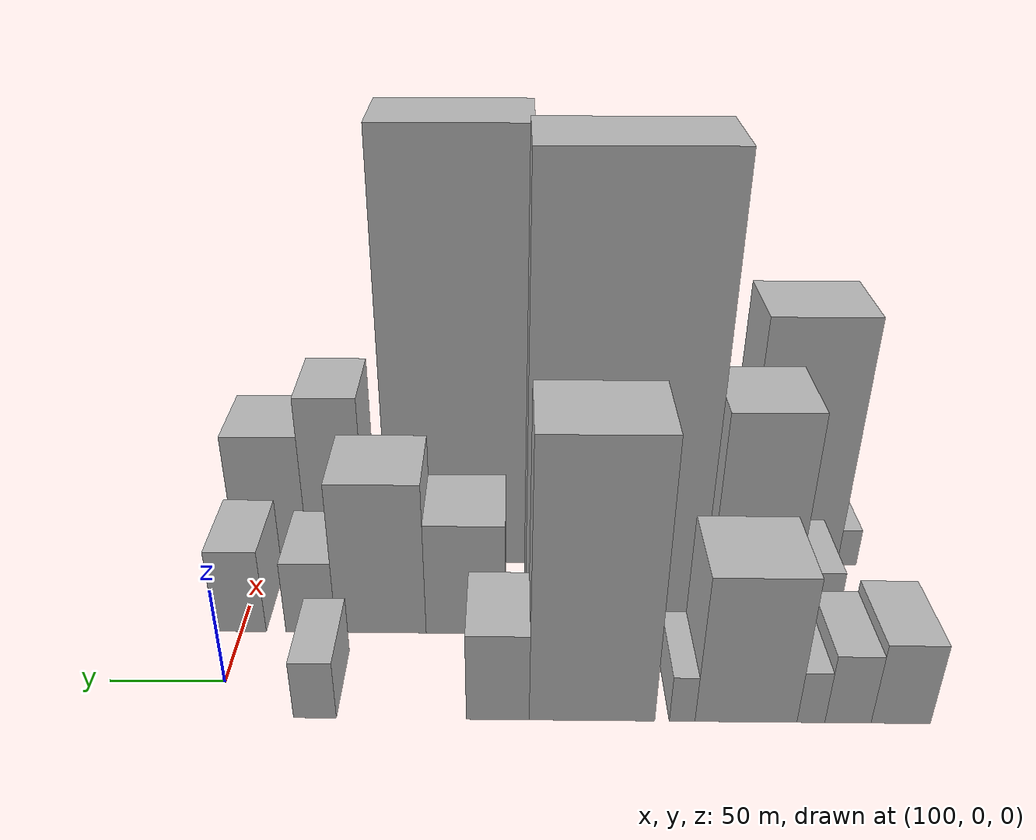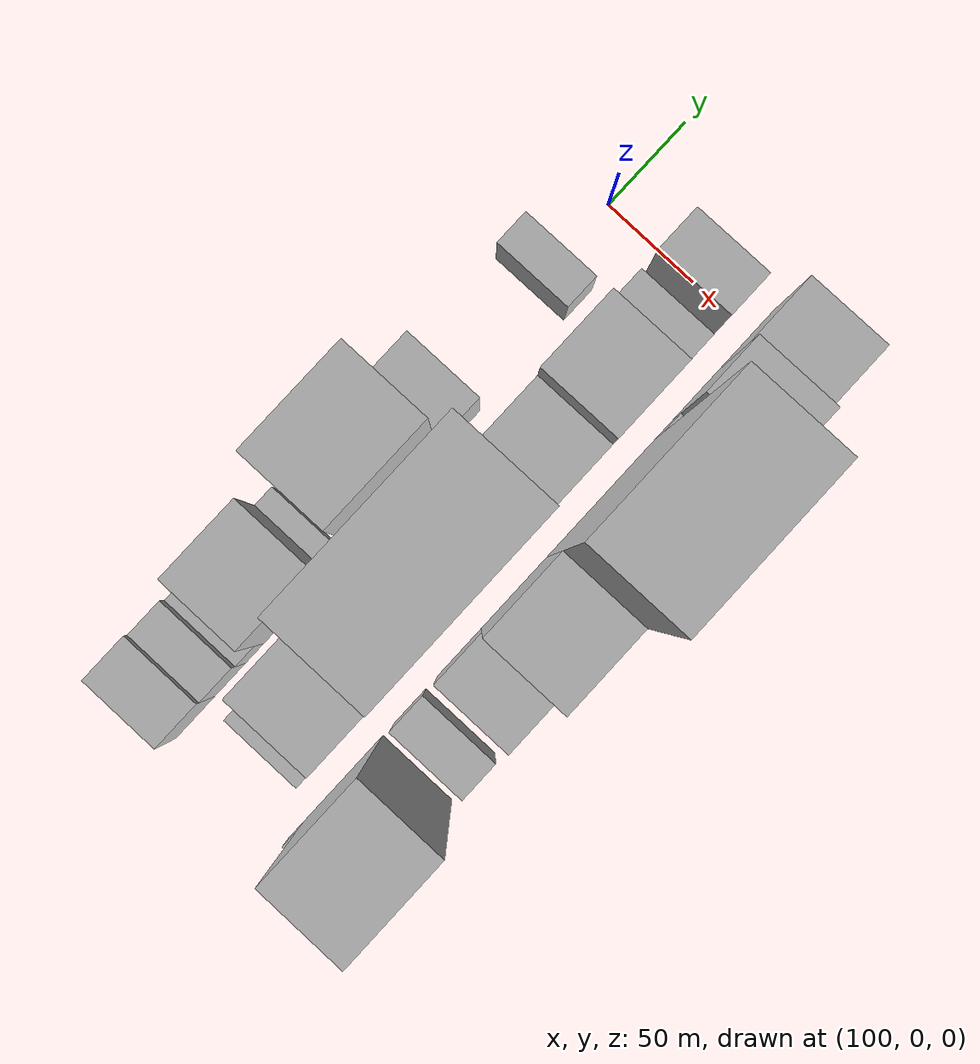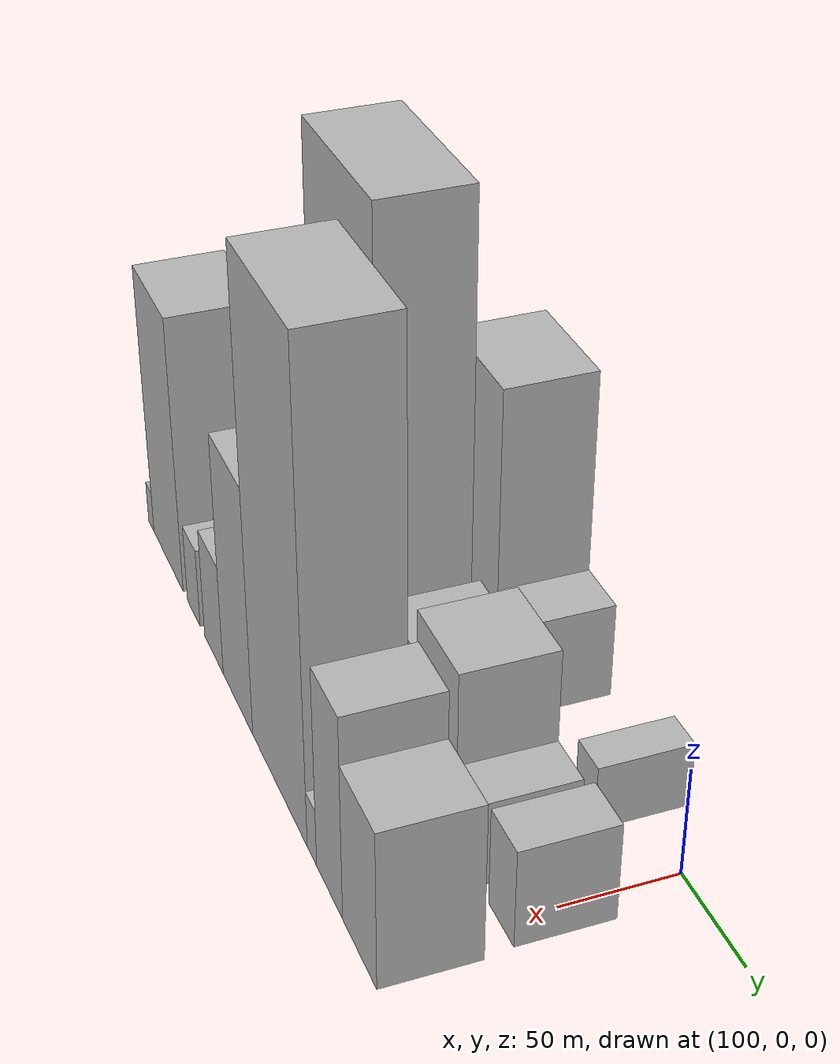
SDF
<sdf version="1.6">
 <world name="default">
  <model name="building_10">
   <static>1</static>
   <pose>100.0000 -283.1105 0 0.000000 0.000000 0.000000</pose>
   <link name="link">
    <pose>0 0 21.00 0 0 0</pose>
    <collision name="collision"><geometry><box><size>40.0000 24.2902 42.0000</size></box></geometry></collision>
    <visual name="visual">
     <cast_shadows>0</cast_shadows>
     <geometry><box><size>40.0000 24.2902 42.0000</size></box></geometry>
     <material>
      <script>
       <uri>model://HANNAS_wall/materials/scripts</uri>
       <uri>model://HANNAS_wall/materials/textures</uri>
       <name>vrc/HANNAS_wall</name>
      </script>
     </material>
    </visual>
   </link>
  </model>
  <model name="building_11">
   <static>1</static>
   <pose>100.0000 -261.4859 0 0.000000 0.000000 0.000000</pose>
   <link name="link">
    <pose>0 0 18.00 0 0 0</pose>
    <collision name="collision"><geometry><box><size>40.0000 18.9591 36.0000</size></box></geometry></collision>
    <visual name="visual">
     <cast_shadows>0</cast_shadows>
     <geometry><box><size>40.0000 18.9591 36.0000</size></box></geometry>
     <material>
      <script>
       <uri>model://HANNAS_wall/materials/scripts</uri>
       <uri>model://HANNAS_wall/materials/textures</uri>
       <name>vrc/HANNAS_wall</name>
      </script>
     </material>
    </visual>
   </link>
  </model>
  <model name="building_12">
   <static>1</static>
   <pose>100.0000 -246.2850 0 0.000000 0.000000 0.000000</pose>
   <link name="link">
    <pose>0 0 13.50 0 0 0</pose>
    <collision name="collision"><geometry><box><size>40.0000 11.4427 27.0000</size></box></geometry></collision>
    <visual name="visual">
     <cast_shadows>0</cast_shadows>
     <geometry><box><size>40.0000 11.4427 27.0000</size></box></geometry>
     <material>
      <script>
       <uri>model://HANNAS_wall/materials/scripts</uri>
       <uri>model://HANNAS_wall/materials/textures</uri>
       <name>vrc/HANNAS_wall</name>
      </script>
     </material>
    </visual>
   </link>
  </model>
  <model name="building_13">
   <static>1</static>
   <pose>100.0000 -219.5942 0 0.000000 0.000000 0.000000</pose>
   <link name="link">
    <pose>0 0 37.50 0 0 0</pose>
    <collision name="collision"><geometry><box><size>40.0000 41.9387 75.0000</size></box></geometry></collision>
    <visual name="visual">
     <cast_shadows>0</cast_shadows>
     <geometry><box><size>40.0000 41.9387 75.0000</size></box></geometry>
     <material>
      <script>
       <uri>model://HANNAS_wall/materials/scripts</uri>
       <uri>model://HANNAS_wall/materials/textures</uri>
       <name>vrc/HANNAS_wall</name>
      </script>
     </material>
    </visual>
   </link>
  </model>
  <model name="building_14">
   <static>1</static>
   <pose>100.0000 -193.3613 0 0.000000 0.000000 0.000000</pose>
   <link name="link">
    <pose>0 0 12.00 0 0 0</pose>
    <collision name="collision"><geometry><box><size>40.0000 10.5271 24.0000</size></box></geometry></collision>
    <visual name="visual">
     <cast_shadows>0</cast_shadows>
     <geometry><box><size>40.0000 10.5271 24.0000</size></box></geometry>
     <material>
      <script>
       <uri>model://HANNAS_wall/materials/scripts</uri>
       <uri>model://HANNAS_wall/materials/textures</uri>
       <name>vrc/HANNAS_wall</name>
      </script>
     </material>
    </visual>
   </link>
  </model>
  <model name="building_15">
   <static>1</static>
   <pose>100.0000 -156.2065 0 0.000000 0.000000 0.000000</pose>
   <link name="link">
    <pose>0 0 69.00 0 0 0</pose>
    <collision name="collision"><geometry><box><size>40.0000 51.7826 138.0000</size></box></geometry></collision>
    <visual name="visual">
     <cast_shadows>0</cast_shadows>
     <geometry><box><size>40.0000 51.7826 138.0000</size></box></geometry>
     <material>
      <script>
       <uri>model://HANNAS_wall/materials/scripts</uri>
       <uri>model://HANNAS_wall/materials/textures</uri>
       <name>vrc/HANNAS_wall</name>
      </script>
     </material>
    </visual>
   </link>
  </model>
  <model name="building_16">
   <static>1</static>
   <pose>100.0000 -117.3530 0 0.000000 0.000000 0.000000</pose>
   <link name="link">
    <pose>0 0 22.50 0 0 0</pose>
    <collision name="collision"><geometry><box><size>40.0000 25.9244 45.0000</size></box></geometry></collision>
    <visual name="visual">
     <cast_shadows>0</cast_shadows>
     <geometry><box><size>40.0000 25.9244 45.0000</size></box></geometry>
     <material>
      <script>
       <uri>model://HANNAS_wall/materials/scripts</uri>
       <uri>model://HANNAS_wall/materials/textures</uri>
       <name>vrc/HANNAS_wall</name>
      </script>
     </material>
    </visual>
   </link>
  </model>
  <model name="building_17">
   <static>1</static>
   <pose>100.0000 -41.7375 0 0.000000 0.000000 0.000000</pose>
   <link name="link">
    <pose>0 0 15.00 0 0 0</pose>
    <collision name="collision"><geometry><box><size>40.0000 17.7689 30.0000</size></box></geometry></collision>
    <visual name="visual">
     <cast_shadows>0</cast_shadows>
     <geometry><box><size>40.0000 17.7689 30.0000</size></box></geometry>
     <material>
      <script>
       <uri>model://HANNAS_wall/materials/scripts</uri>
       <uri>model://HANNAS_wall/materials/textures</uri>
       <name>vrc/HANNAS_wall</name>
      </script>
     </material>
    </visual>
   </link>
  </model>
  <model name="building_42">
   <static>1</static>
   <pose>152.0000 -259.4082 0 0.000000 0.000000 0.000000</pose>
   <link name="link">
    <pose>0 0 18.00 0 0 0</pose>
    <collision name="collision"><geometry><box><size>40.0000 20.0698 36.0000</size></box></geometry></collision>
    <visual name="visual">
     <cast_shadows>0</cast_shadows>
     <geometry><box><size>40.0000 20.0698 36.0000</size></box></geometry>
     <material>
      <script>
       <uri>model://HANNAS_wall/materials/scripts</uri>
       <uri>model://HANNAS_wall/materials/textures</uri>
       <name>vrc/HANNAS_wall</name>
      </script>
     </material>
    </visual>
   </link>
  </model>
  <model name="building_43">
   <static>1</static>
   <pose>152.0000 -229.8704 0 0.000000 0.000000 0.000000</pose>
   <link name="link">
    <pose>0 0 58.50 0 0 0</pose>
    <collision name="collision"><geometry><box><size>40.0000 39.0057 117.0000</size></box></geometry></collision>
    <visual name="visual">
     <cast_shadows>0</cast_shadows>
     <geometry><box><size>40.0000 39.0057 117.0000</size></box></geometry>
     <material>
      <script>
       <uri>model://HANNAS_wall/materials/scripts</uri>
       <uri>model://HANNAS_wall/materials/textures</uri>
       <name>vrc/HANNAS_wall</name>
      </script>
     </material>
    </visual>
   </link>
  </model>
  <model name="building_44">
   <static>1</static>
   <pose>152.0000 -168.1744 0 0.000000 0.000000 0.000000</pose>
   <link name="link">
    <pose>0 0 112.50 0 0 0</pose>
    <collision name="collision"><geometry><box><size>40.0000 78.3864 225.0000</size></box></geometry></collision>
    <visual name="visual">
     <cast_shadows>0</cast_shadows>
     <geometry><box><size>40.0000 78.3864 225.0000</size></box></geometry>
     <material>
      <script>
       <uri>model://HANNAS_wall/materials/scripts</uri>
       <uri>model://HANNAS_wall/materials/textures</uri>
       <name>vrc/HANNAS_wall</name>
      </script>
     </material>
    </visual>
   </link>
  </model>
  <model name="building_45">
   <static>1</static>
   <pose>152.0000 -102.0199 0 0.000000 0.000000 0.000000</pose>
   <link name="link">
    <pose>0 0 30.00 0 0 0</pose>
    <collision name="collision"><geometry><box><size>40.0000 35.9226 60.0000</size></box></geometry></collision>
    <visual name="visual">
     <cast_shadows>0</cast_shadows>
     <geometry><box><size>40.0000 35.9226 60.0000</size></box></geometry>
     <material>
      <script>
       <uri>model://HANNAS_wall/materials/scripts</uri>
       <uri>model://HANNAS_wall/materials/textures</uri>
       <name>vrc/HANNAS_wall</name>
      </script>
     </material>
    </visual>
   </link>
  </model>
  <model name="building_46">
   <static>1</static>
   <pose>152.0000 -63.4967 0 0.000000 0.000000 0.000000</pose>
   <link name="link">
    <pose>0 0 40.50 0 0 0</pose>
    <collision name="collision"><geometry><box><size>40.0000 41.1237 81.0000</size></box></geometry></collision>
    <visual name="visual">
     <cast_shadows>0</cast_shadows>
     <geometry><box><size>40.0000 41.1237 81.0000</size></box></geometry>
     <material>
      <script>
       <uri>model://HANNAS_wall/materials/scripts</uri>
       <uri>model://HANNAS_wall/materials/textures</uri>
       <name>vrc/HANNAS_wall</name>
      </script>
     </material>
    </visual>
   </link>
  </model>
  <model name="building_47">
   <static>1</static>
   <pose>152.0000 -31.5005 0 0.000000 0.000000 0.000000</pose>
   <link name="link">
    <pose>0 0 19.50 0 0 0</pose>
    <collision name="collision"><geometry><box><size>40.0000 22.8687 39.0000</size></box></geometry></collision>
    <visual name="visual">
     <cast_shadows>0</cast_shadows>
     <geometry><box><size>40.0000 22.8687 39.0000</size></box></geometry>
     <material>
      <script>
       <uri>model://HANNAS_wall/materials/scripts</uri>
       <uri>model://HANNAS_wall/materials/textures</uri>
       <name>vrc/HANNAS_wall</name>
      </script>
     </material>
    </visual>
   </link>
  </model>
  <model name="building_48">
   <static>1</static>
   <pose>152.0000 0.6745 0 0.000000 0.000000 0.000000</pose>
   <link name="link">
    <pose>0 0 22.50 0 0 0</pose>
    <collision name="collision"><geometry><box><size>40.0000 23.4812 45.0000</size></box></geometry></collision>
    <visual name="visual">
     <cast_shadows>0</cast_shadows>
     <geometry><box><size>40.0000 23.4812 45.0000</size></box></geometry>
     <material>
      <script>
       <uri>model://HANNAS_wall/materials/scripts</uri>
       <uri>model://HANNAS_wall/materials/textures</uri>
       <name>vrc/HANNAS_wall</name>
      </script>
     </material>
    </visual>
   </link>
  </model>
  <model name="building_70">
   <static>1</static>
   <pose>204.0000 -288.8050 0 0.000000 0.000000 0.000000</pose>
   <link name="link">
    <pose>0 0 10.50 0 0 0</pose>
    <collision name="collision"><geometry><box><size>40.0000 9.4171 21.0000</size></box></geometry></collision>
    <visual name="visual">
     <cast_shadows>0</cast_shadows>
     <geometry><box><size>40.0000 9.4171 21.0000</size></box></geometry>
     <material>
      <script>
       <uri>model://HANNAS_wall/materials/scripts</uri>
       <uri>model://HANNAS_wall/materials/textures</uri>
       <name>vrc/HANNAS_wall</name>
      </script>
     </material>
    </visual>
   </link>
  </model>
  <model name="building_71">
   <static>1</static>
   <pose>204.0000 -259.3557 0 0.000000 0.000000 0.000000</pose>
   <link name="link">
    <pose>0 0 67.50 0 0 0</pose>
    <collision name="collision"><geometry><box><size>40.0000 49.4816 135.0000</size></box></geometry></collision>
    <visual name="visual">
     <cast_shadows>0</cast_shadows>
     <geometry><box><size>40.0000 49.4816 135.0000</size></box></geometry>
     <material>
      <script>
       <uri>model://HANNAS_wall/materials/scripts</uri>
       <uri>model://HANNAS_wall/materials/textures</uri>
       <name>vrc/HANNAS_wall</name>
      </script>
     </material>
    </visual>
   </link>
  </model>
  <model name="building_72">
   <static>1</static>
   <pose>204.0000 -217.6466 0 0.000000 0.000000 0.000000</pose>
   <link name="link">
    <pose>0 0 19.50 0 0 0</pose>
    <collision name="collision"><geometry><box><size>40.0000 19.9365 39.0000</size></box></geometry></collision>
    <visual name="visual">
     <cast_shadows>0</cast_shadows>
     <geometry><box><size>40.0000 19.9365 39.0000</size></box></geometry>
     <material>
      <script>
       <uri>model://HANNAS_wall/materials/scripts</uri>
       <uri>model://HANNAS_wall/materials/textures</uri>
       <name>vrc/HANNAS_wall</name>
      </script>
     </material>
    </visual>
   </link>
  </model>
  <model name="building_73">
   <static>1</static>
   <pose>204.0000 -186.7148 0 0.000000 0.000000 0.000000</pose>
   <link name="link">
    <pose>0 0 27.00 0 0 0</pose>
    <collision name="collision"><geometry><box><size>40.0000 27.9272 54.0000</size></box></geometry></collision>
    <visual name="visual">
     <cast_shadows>0</cast_shadows>
     <geometry><box><size>40.0000 27.9272 54.0000</size></box></geometry>
     <material>
      <script>
       <uri>model://HANNAS_wall/materials/scripts</uri>
       <uri>model://HANNAS_wall/materials/textures</uri>
       <name>vrc/HANNAS_wall</name>
      </script>
     </material>
    </visual>
   </link>
  </model>
  <model name="building_74">
   <static>1</static>
   <pose>204.0000 -151.9746 0 0.000000 0.000000 0.000000</pose>
   <link name="link">
    <pose>0 0 58.50 0 0 0</pose>
    <collision name="collision"><geometry><box><size>40.0000 41.5532 117.0000</size></box></geometry></collision>
    <visual name="visual">
     <cast_shadows>0</cast_shadows>
     <geometry><box><size>40.0000 41.5532 117.0000</size></box></geometry>
     <material>
      <script>
       <uri>model://HANNAS_wall/materials/scripts</uri>
       <uri>model://HANNAS_wall/materials/textures</uri>
       <name>vrc/HANNAS_wall</name>
      </script>
     </material>
    </visual>
   </link>
  </model>
  <model name="building_75">
   <static>1</static>
   <pose>204.0000 -96.6365 0 0.000000 0.000000 0.000000</pose>
   <link name="link">
    <pose>0 0 109.50 0 0 0</pose>
    <collision name="collision"><geometry><box><size>40.0000 69.1231 219.0000</size></box></geometry></collision>
    <visual name="visual">
     <cast_shadows>0</cast_shadows>
     <geometry><box><size>40.0000 69.1231 219.0000</size></box></geometry>
     <material>
      <script>
       <uri>model://HANNAS_wall/materials/scripts</uri>
       <uri>model://HANNAS_wall/materials/textures</uri>
       <name>vrc/HANNAS_wall</name>
      </script>
     </material>
    </visual>
   </link>
  </model>
  <model name="building_76">
   <static>1</static>
   <pose>204.0000 -56.5677 0 0.000000 0.000000 0.000000</pose>
   <link name="link">
    <pose>0 0 13.50 0 0 0</pose>
    <collision name="collision"><geometry><box><size>40.0000 11.0143 27.0000</size></box></geometry></collision>
    <visual name="visual">
     <cast_shadows>0</cast_shadows>
     <geometry><box><size>40.0000 11.0143 27.0000</size></box></geometry>
     <material>
      <script>
       <uri>model://HANNAS_wall/materials/scripts</uri>
       <uri>model://HANNAS_wall/materials/textures</uri>
       <name>vrc/HANNAS_wall</name>
      </script>
     </material>
    </visual>
   </link>
  </model>
  <model name="building_77">
   <static>1</static>
   <pose>204.0000 -36.4045 0 0.000000 0.000000 0.000000</pose>
   <link name="link">
    <pose>0 0 46.50 0 0 0</pose>
    <collision name="collision"><geometry><box><size>40.0000 29.3122 93.0000</size></box></geometry></collision>
    <visual name="visual">
     <cast_shadows>0</cast_shadows>
     <geometry><box><size>40.0000 29.3122 93.0000</size></box></geometry>
     <material>
      <script>
       <uri>model://HANNAS_wall/materials/scripts</uri>
       <uri>model://HANNAS_wall/materials/textures</uri>
       <name>vrc/HANNAS_wall</name>
      </script>
     </material>
    </visual>
   </link>
  </model>
  <model name="building_78">
   <static>1</static>
   <pose>204.0000 -3.7217 0 0.000000 0.000000 0.000000</pose>
   <link name="link">
    <pose>0 0 36.00 0 0 0</pose>
    <collision name="collision"><geometry><box><size>40.0000 36.0533 72.0000</size></box></geometry></collision>
    <visual name="visual">
     <cast_shadows>0</cast_shadows>
     <geometry><box><size>40.0000 36.0533 72.0000</size></box></geometry>
     <material>
      <script>
       <uri>model://HANNAS_wall/materials/scripts</uri>
       <uri>model://HANNAS_wall/materials/textures</uri>
       <name>vrc/HANNAS_wall</name>
      </script>
     </material>
    </visual>
   </link>
  </model>
 </world>
</sdf>
